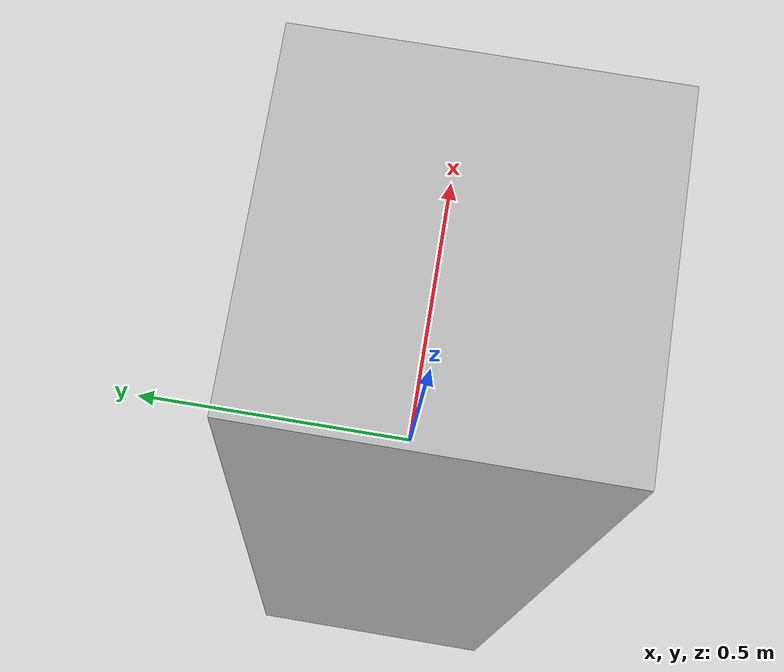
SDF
<?xml version="1.0" ?>
<sdf version="1.5">
  <model name="person_standing">
    <link name="link">
      <inertial>
        <pose>0 -0.1 0.95 0 0 0</pose>
        <mass>80.0</mass>
        <inertia>
          <ixx>24.88</ixx>
          <ixy>0</ixy>
          <ixz>0</ixz>
          <iyy>25.73</iyy>
          <iyz>0</iyz>
          <izz>2.48</izz>
        </inertia>
      </inertial>

      <collision name="bottom">
        <pose>0 -0.1 0.01 0 0 1.57</pose>
        <geometry>
          <box>
            <size>0.05 0.035 0.02</size>
          </box>
        </geometry>
      </collision>

      <collision name="person">
        <pose>0 0 0.02 0.04 0 1.57</pose>
        <geometry>
  <box><size>0.001 0.001 0.001</size></box>
</geometry>
      </collision>

      <visual name="visual">
        <pose>0 0 0.02 0.04 0 1.57</pose>
        <geometry>
  <box><size>0.5 0.5 1.8</size></box>
</geometry>
      </visual>
    </link>
  </model>
</sdf>
